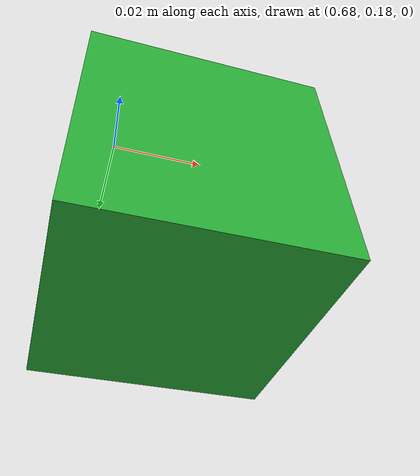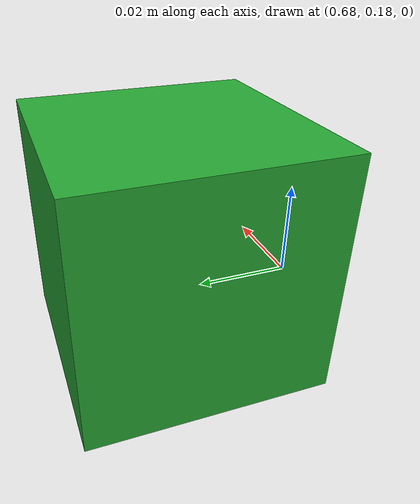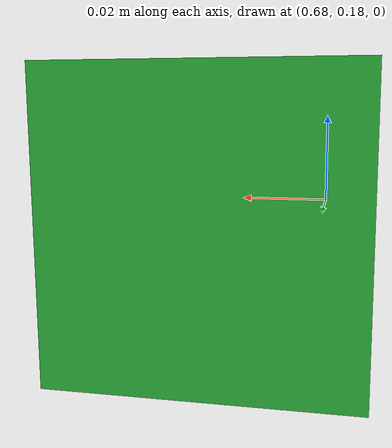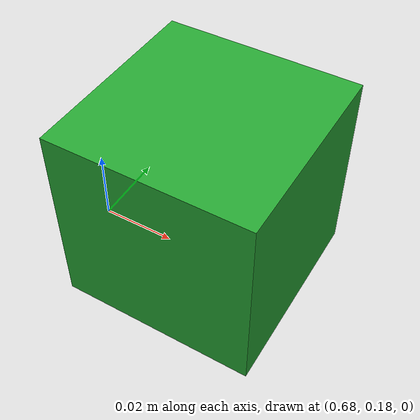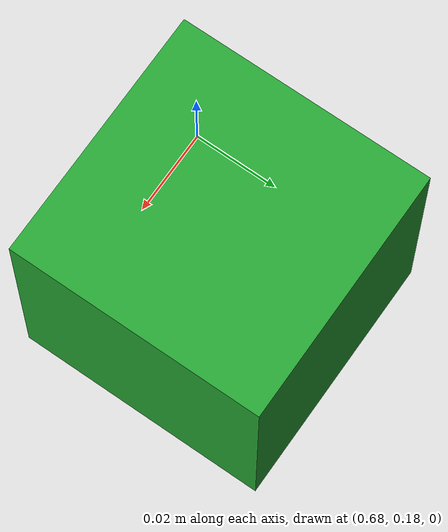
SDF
<?xml version="1.0"?>
<sdf version="1.5">
  <model name="object_box2">
    <static>false</static>
    <link name="link">
      <inertial>
        <pose>0.7 0.2 0 0 0 0</pose>
        <mass>0.5</mass>
      </inertial>
      <collision name="collision">
        <pose>0.7 0.2 0 0 0 0</pose>
        <geometry>
          <box>
            <size>0.06 0.06 0.06</size>
          </box>
        </geometry>
        <surface>
          <friction>
            <ode>
              <mu>100</mu>
              <mu2>50</mu2>
            </ode>
          </friction>
        </surface>
      </collision>
      <visual name="visual">
        <pose>0.7 0.2 0 0 0 0</pose>
        <geometry>
          <box>
            <size>0.06 0.06 0.06</size>
          </box>
        </geometry>
        <material>
          <script>
            <uri>file://media/materials/scripts/gazebo.material</uri>
            <name>Gazebo/Green</name>
          </script>
        </material>
      </visual>
    </link>
  </model>
</sdf>
